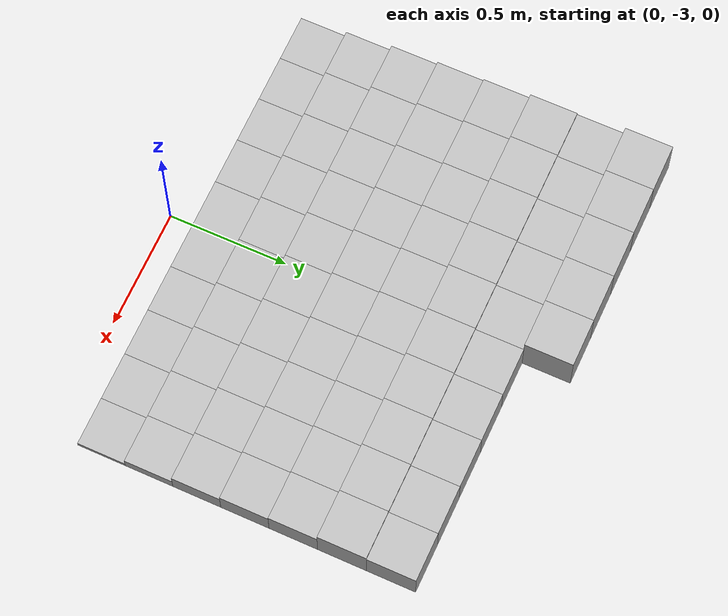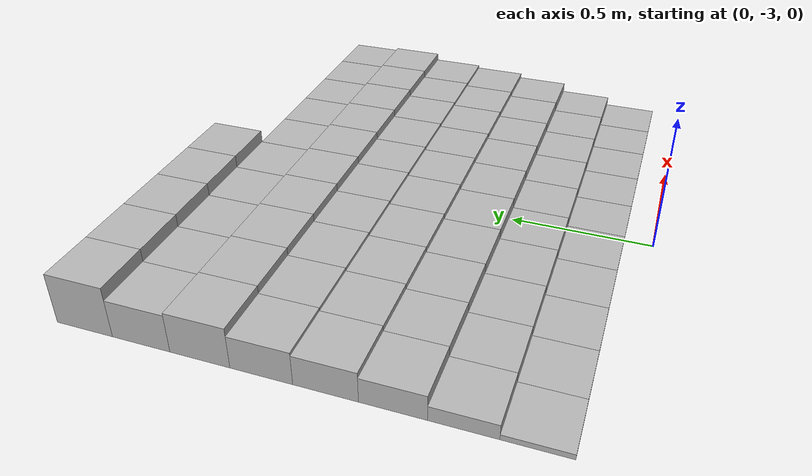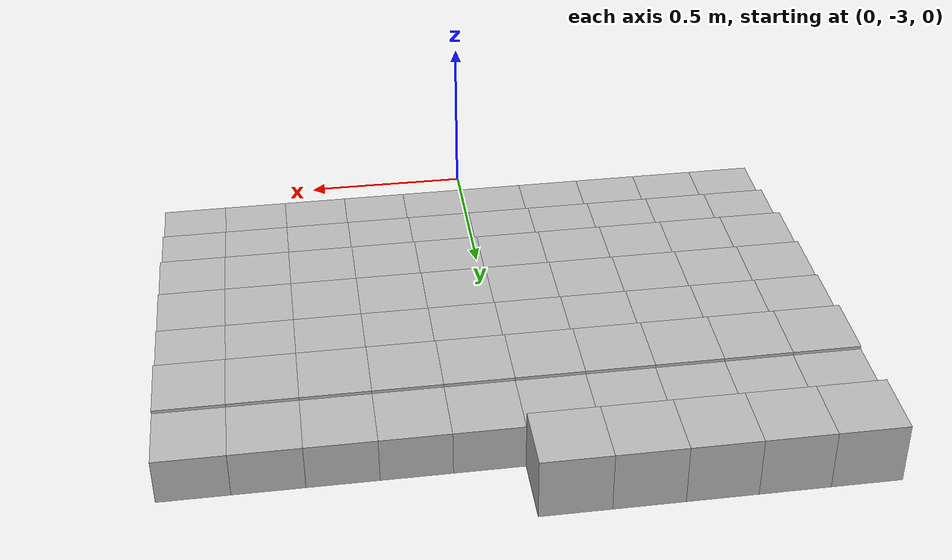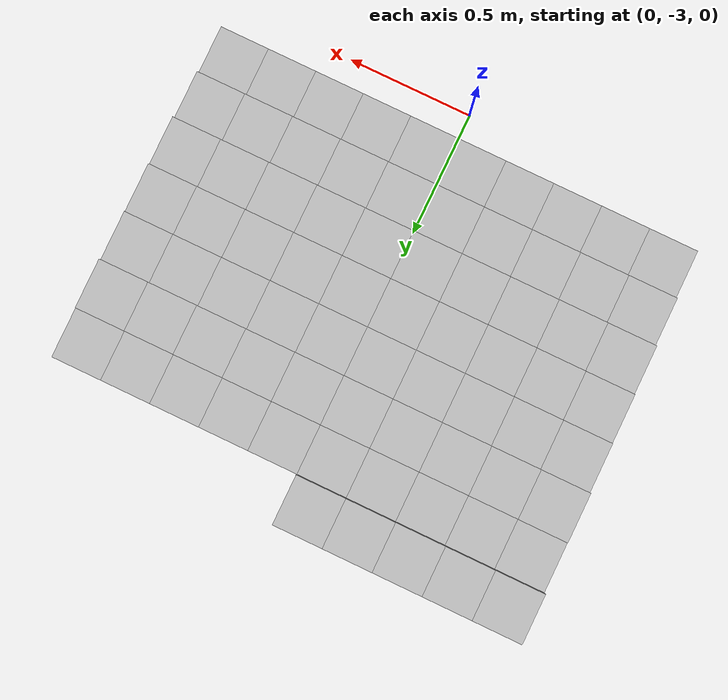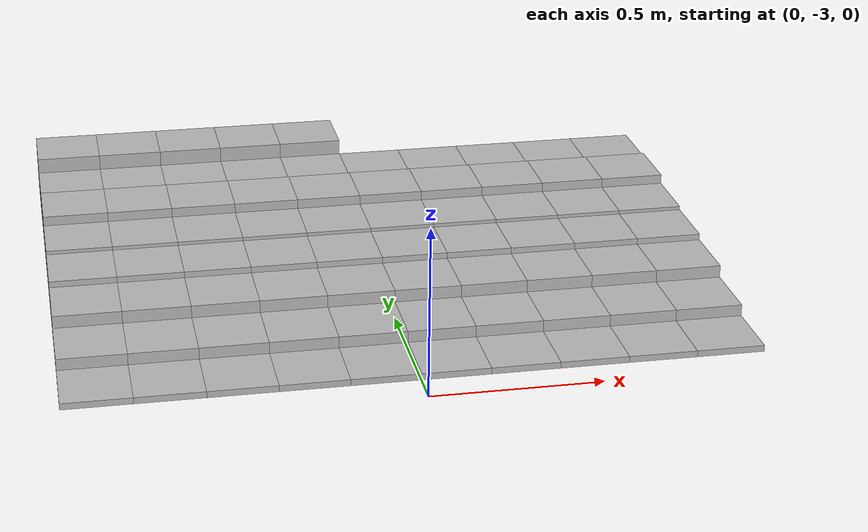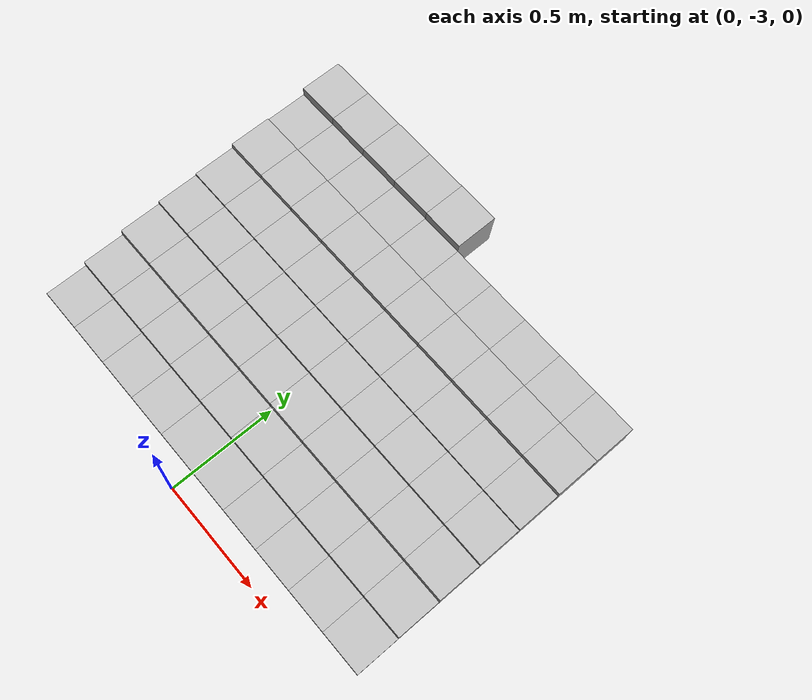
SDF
<sdf version="1.6">
 <model name="Terrain">
  <static>true</static>
  <link name="box_7_0">
   <pose>-0.9 -1.4 0.0936538717073 0 0 0</pose>
   <inertial>
    <mass>1.0</mass>
    <inertia><ixx>0.0</ixx><ixy>0.0</ixy><ixz>0.0</ixz><iyy>0.0</iyy><iyz>0.0</iyz><izz>0.0</izz></inertia>
   </inertial>
   <collision name="collision"><geometry><box><size>0.2 0.2 0.187307743415</size></box></geometry></collision>
   <visual name="visual"><geometry><box><size>0.2 0.2 0.187307743415</size></box></geometry></visual>
  </link>
  <link name="box_7_1">
   <pose>-0.7 -1.4 0.0936538717073 0 0 0</pose>
   <inertial>
    <mass>1.0</mass>
    <inertia><ixx>0.0</ixx><ixy>0.0</ixy><ixz>0.0</ixz><iyy>0.0</iyy><iyz>0.0</iyz><izz>0.0</izz></inertia>
   </inertial>
   <collision name="collision"><geometry><box><size>0.2 0.2 0.187307743415</size></box></geometry></collision>
   <visual name="visual"><geometry><box><size>0.2 0.2 0.187307743415</size></box></geometry></visual>
  </link>
  <link name="box_7_2">
   <pose>-0.5 -1.4 0.0936538717073 0 0 0</pose>
   <inertial>
    <mass>1.0</mass>
    <inertia><ixx>0.0</ixx><ixy>0.0</ixy><ixz>0.0</ixz><iyy>0.0</iyy><iyz>0.0</iyz><izz>0.0</izz></inertia>
   </inertial>
   <collision name="collision"><geometry><box><size>0.2 0.2 0.187307743415</size></box></geometry></collision>
   <visual name="visual"><geometry><box><size>0.2 0.2 0.187307743415</size></box></geometry></visual>
  </link>
  <link name="box_7_3">
   <pose>-0.3 -1.4 0.0936538717073 0 0 0</pose>
   <inertial>
    <mass>1.0</mass>
    <inertia><ixx>0.0</ixx><ixy>0.0</ixy><ixz>0.0</ixz><iyy>0.0</iyy><iyz>0.0</iyz><izz>0.0</izz></inertia>
   </inertial>
   <collision name="collision"><geometry><box><size>0.2 0.2 0.187307743415</size></box></geometry></collision>
   <visual name="visual"><geometry><box><size>0.2 0.2 0.187307743415</size></box></geometry></visual>
  </link>
  <link name="box_7_4">
   <pose>-0.1 -1.4 0.0936538717073 0 0 0</pose>
   <inertial>
    <mass>1.0</mass>
    <inertia><ixx>0.0</ixx><ixy>0.0</ixy><ixz>0.0</ixz><iyy>0.0</iyy><iyz>0.0</iyz><izz>0.0</izz></inertia>
   </inertial>
   <collision name="collision"><geometry><box><size>0.2 0.2 0.187307743415</size></box></geometry></collision>
   <visual name="visual"><geometry><box><size>0.2 0.2 0.187307743415</size></box></geometry></visual>
  </link>
  <link name="box_8_0">
   <pose>-0.9 -1.6 0.0700517910336 0 0 0</pose>
   <inertial>
    <mass>1.0</mass>
    <inertia><ixx>0.0</ixx><ixy>0.0</ixy><ixz>0.0</ixz><iyy>0.0</iyy><iyz>0.0</iyz><izz>0.0</izz></inertia>
   </inertial>
   <collision name="collision"><geometry><box><size>0.2 0.2 0.140103582067</size></box></geometry></collision>
   <visual name="visual"><geometry><box><size>0.2 0.2 0.140103582067</size></box></geometry></visual>
  </link>
  <link name="box_8_1">
   <pose>-0.7 -1.6 0.0700517910336 0 0 0</pose>
   <inertial>
    <mass>1.0</mass>
    <inertia><ixx>0.0</ixx><ixy>0.0</ixy><ixz>0.0</ixz><iyy>0.0</iyy><iyz>0.0</iyz><izz>0.0</izz></inertia>
   </inertial>
   <collision name="collision"><geometry><box><size>0.2 0.2 0.140103582067</size></box></geometry></collision>
   <visual name="visual"><geometry><box><size>0.2 0.2 0.140103582067</size></box></geometry></visual>
  </link>
  <link name="box_8_2">
   <pose>-0.5 -1.6 0.0700517910336 0 0 0</pose>
   <inertial>
    <mass>1.0</mass>
    <inertia><ixx>0.0</ixx><ixy>0.0</ixy><ixz>0.0</ixz><iyy>0.0</iyy><iyz>0.0</iyz><izz>0.0</izz></inertia>
   </inertial>
   <collision name="collision"><geometry><box><size>0.2 0.2 0.140103582067</size></box></geometry></collision>
   <visual name="visual"><geometry><box><size>0.2 0.2 0.140103582067</size></box></geometry></visual>
  </link>
  <link name="box_8_3">
   <pose>-0.3 -1.6 0.0700517910336 0 0 0</pose>
   <inertial>
    <mass>1.0</mass>
    <inertia><ixx>0.0</ixx><ixy>0.0</ixy><ixz>0.0</ixz><iyy>0.0</iyy><iyz>0.0</iyz><izz>0.0</izz></inertia>
   </inertial>
   <collision name="collision"><geometry><box><size>0.2 0.2 0.140103582067</size></box></geometry></collision>
   <visual name="visual"><geometry><box><size>0.2 0.2 0.140103582067</size></box></geometry></visual>
  </link>
  <link name="box_8_4">
   <pose>-0.1 -1.6 0.0700517910336 0 0 0</pose>
   <inertial>
    <mass>1.0</mass>
    <inertia><ixx>0.0</ixx><ixy>0.0</ixy><ixz>0.0</ixz><iyy>0.0</iyy><iyz>0.0</iyz><izz>0.0</izz></inertia>
   </inertial>
   <collision name="collision"><geometry><box><size>0.2 0.2 0.140103582067</size></box></geometry></collision>
   <visual name="visual"><geometry><box><size>0.2 0.2 0.140103582067</size></box></geometry></visual>
  </link>
  <link name="box_8_5">
   <pose>0.1 -1.6 0.0700517910336 0 0 0</pose>
   <inertial>
    <mass>1.0</mass>
    <inertia><ixx>0.0</ixx><ixy>0.0</ixy><ixz>0.0</ixz><iyy>0.0</iyy><iyz>0.0</iyz><izz>0.0</izz></inertia>
   </inertial>
   <collision name="collision"><geometry><box><size>0.2 0.2 0.140103582067</size></box></geometry></collision>
   <visual name="visual"><geometry><box><size>0.2 0.2 0.140103582067</size></box></geometry></visual>
  </link>
  <link name="box_8_6">
   <pose>0.3 -1.6 0.0700517910336 0 0 0</pose>
   <inertial>
    <mass>1.0</mass>
    <inertia><ixx>0.0</ixx><ixy>0.0</ixy><ixz>0.0</ixz><iyy>0.0</iyy><iyz>0.0</iyz><izz>0.0</izz></inertia>
   </inertial>
   <collision name="collision"><geometry><box><size>0.2 0.2 0.140103582067</size></box></geometry></collision>
   <visual name="visual"><geometry><box><size>0.2 0.2 0.140103582067</size></box></geometry></visual>
  </link>
  <link name="box_8_7">
   <pose>0.5 -1.6 0.0700517910336 0 0 0</pose>
   <inertial>
    <mass>1.0</mass>
    <inertia><ixx>0.0</ixx><ixy>0.0</ixy><ixz>0.0</ixz><iyy>0.0</iyy><iyz>0.0</iyz><izz>0.0</izz></inertia>
   </inertial>
   <collision name="collision"><geometry><box><size>0.2 0.2 0.140103582067</size></box></geometry></collision>
   <visual name="visual"><geometry><box><size>0.2 0.2 0.140103582067</size></box></geometry></visual>
  </link>
  <link name="box_8_8">
   <pose>0.7 -1.6 0.0700517910336 0 0 0</pose>
   <inertial>
    <mass>1.0</mass>
    <inertia><ixx>0.0</ixx><ixy>0.0</ixy><ixz>0.0</ixz><iyy>0.0</iyy><iyz>0.0</iyz><izz>0.0</izz></inertia>
   </inertial>
   <collision name="collision"><geometry><box><size>0.2 0.2 0.140103582067</size></box></geometry></collision>
   <visual name="visual"><geometry><box><size>0.2 0.2 0.140103582067</size></box></geometry></visual>
  </link>
  <link name="box_8_9">
   <pose>0.9 -1.6 0.0700517910336 0 0 0</pose>
   <inertial>
    <mass>1.0</mass>
    <inertia><ixx>0.0</ixx><ixy>0.0</ixy><ixz>0.0</ixz><iyy>0.0</iyy><iyz>0.0</iyz><izz>0.0</izz></inertia>
   </inertial>
   <collision name="collision"><geometry><box><size>0.2 0.2 0.140103582067</size></box></geometry></collision>
   <visual name="visual"><geometry><box><size>0.2 0.2 0.140103582067</size></box></geometry></visual>
  </link>
  <link name="box_9_0">
   <pose>-0.9 -1.8 0.0748229428655 0 0 0</pose>
   <inertial>
    <mass>1.0</mass>
    <inertia><ixx>0.0</ixx><ixy>0.0</ixy><ixz>0.0</ixz><iyy>0.0</iyy><iyz>0.0</iyz><izz>0.0</izz></inertia>
   </inertial>
   <collision name="collision"><geometry><box><size>0.2 0.2 0.149645885731</size></box></geometry></collision>
   <visual name="visual"><geometry><box><size>0.2 0.2 0.149645885731</size></box></geometry></visual>
  </link>
  <link name="box_9_1">
   <pose>-0.7 -1.8 0.0748229428655 0 0 0</pose>
   <inertial>
    <mass>1.0</mass>
    <inertia><ixx>0.0</ixx><ixy>0.0</ixy><ixz>0.0</ixz><iyy>0.0</iyy><iyz>0.0</iyz><izz>0.0</izz></inertia>
   </inertial>
   <collision name="collision"><geometry><box><size>0.2 0.2 0.149645885731</size></box></geometry></collision>
   <visual name="visual"><geometry><box><size>0.2 0.2 0.149645885731</size></box></geometry></visual>
  </link>
  <link name="box_9_2">
   <pose>-0.5 -1.8 0.0748229428655 0 0 0</pose>
   <inertial>
    <mass>1.0</mass>
    <inertia><ixx>0.0</ixx><ixy>0.0</ixy><ixz>0.0</ixz><iyy>0.0</iyy><iyz>0.0</iyz><izz>0.0</izz></inertia>
   </inertial>
   <collision name="collision"><geometry><box><size>0.2 0.2 0.149645885731</size></box></geometry></collision>
   <visual name="visual"><geometry><box><size>0.2 0.2 0.149645885731</size></box></geometry></visual>
  </link>
  <link name="box_9_3">
   <pose>-0.3 -1.8 0.0748229428655 0 0 0</pose>
   <inertial>
    <mass>1.0</mass>
    <inertia><ixx>0.0</ixx><ixy>0.0</ixy><ixz>0.0</ixz><iyy>0.0</iyy><iyz>0.0</iyz><izz>0.0</izz></inertia>
   </inertial>
   <collision name="collision"><geometry><box><size>0.2 0.2 0.149645885731</size></box></geometry></collision>
   <visual name="visual"><geometry><box><size>0.2 0.2 0.149645885731</size></box></geometry></visual>
  </link>
  <link name="box_9_4">
   <pose>-0.1 -1.8 0.0748229428655 0 0 0</pose>
   <inertial>
    <mass>1.0</mass>
    <inertia><ixx>0.0</ixx><ixy>0.0</ixy><ixz>0.0</ixz><iyy>0.0</iyy><iyz>0.0</iyz><izz>0.0</izz></inertia>
   </inertial>
   <collision name="collision"><geometry><box><size>0.2 0.2 0.149645885731</size></box></geometry></collision>
   <visual name="visual"><geometry><box><size>0.2 0.2 0.149645885731</size></box></geometry></visual>
  </link>
  <link name="box_9_5">
   <pose>0.1 -1.8 0.0748229428655 0 0 0</pose>
   <inertial>
    <mass>1.0</mass>
    <inertia><ixx>0.0</ixx><ixy>0.0</ixy><ixz>0.0</ixz><iyy>0.0</iyy><iyz>0.0</iyz><izz>0.0</izz></inertia>
   </inertial>
   <collision name="collision"><geometry><box><size>0.2 0.2 0.149645885731</size></box></geometry></collision>
   <visual name="visual"><geometry><box><size>0.2 0.2 0.149645885731</size></box></geometry></visual>
  </link>
  <link name="box_9_6">
   <pose>0.3 -1.8 0.0748229428655 0 0 0</pose>
   <inertial>
    <mass>1.0</mass>
    <inertia><ixx>0.0</ixx><ixy>0.0</ixy><ixz>0.0</ixz><iyy>0.0</iyy><iyz>0.0</iyz><izz>0.0</izz></inertia>
   </inertial>
   <collision name="collision"><geometry><box><size>0.2 0.2 0.149645885731</size></box></geometry></collision>
   <visual name="visual"><geometry><box><size>0.2 0.2 0.149645885731</size></box></geometry></visual>
  </link>
  <link name="box_9_7">
   <pose>0.5 -1.8 0.0748229428655 0 0 0</pose>
   <inertial>
    <mass>1.0</mass>
    <inertia><ixx>0.0</ixx><ixy>0.0</ixy><ixz>0.0</ixz><iyy>0.0</iyy><iyz>0.0</iyz><izz>0.0</izz></inertia>
   </inertial>
   <collision name="collision"><geometry><box><size>0.2 0.2 0.149645885731</size></box></geometry></collision>
   <visual name="visual"><geometry><box><size>0.2 0.2 0.149645885731</size></box></geometry></visual>
  </link>
  <link name="box_9_8">
   <pose>0.7 -1.8 0.0748229428655 0 0 0</pose>
   <inertial>
    <mass>1.0</mass>
    <inertia><ixx>0.0</ixx><ixy>0.0</ixy><ixz>0.0</ixz><iyy>0.0</iyy><iyz>0.0</iyz><izz>0.0</izz></inertia>
   </inertial>
   <collision name="collision"><geometry><box><size>0.2 0.2 0.149645885731</size></box></geometry></collision>
   <visual name="visual"><geometry><box><size>0.2 0.2 0.149645885731</size></box></geometry></visual>
  </link>
  <link name="box_9_9">
   <pose>0.9 -1.8 0.0748229428655 0 0 0</pose>
   <inertial>
    <mass>1.0</mass>
    <inertia><ixx>0.0</ixx><ixy>0.0</ixy><ixz>0.0</ixz><iyy>0.0</iyy><iyz>0.0</iyz><izz>0.0</izz></inertia>
   </inertial>
   <collision name="collision"><geometry><box><size>0.2 0.2 0.149645885731</size></box></geometry></collision>
   <visual name="visual"><geometry><box><size>0.2 0.2 0.149645885731</size></box></geometry></visual>
  </link>
  <link name="box_10_0">
   <pose>-0.9 -2.0 0.0601947128685 0 0 0</pose>
   <inertial>
    <mass>1.0</mass>
    <inertia><ixx>0.0</ixx><ixy>0.0</ixy><ixz>0.0</ixz><iyy>0.0</iyy><iyz>0.0</iyz><izz>0.0</izz></inertia>
   </inertial>
   <collision name="collision"><geometry><box><size>0.2 0.2 0.120389425737</size></box></geometry></collision>
   <visual name="visual"><geometry><box><size>0.2 0.2 0.120389425737</size></box></geometry></visual>
  </link>
  <link name="box_10_1">
   <pose>-0.7 -2.0 0.0601947128685 0 0 0</pose>
   <inertial>
    <mass>1.0</mass>
    <inertia><ixx>0.0</ixx><ixy>0.0</ixy><ixz>0.0</ixz><iyy>0.0</iyy><iyz>0.0</iyz><izz>0.0</izz></inertia>
   </inertial>
   <collision name="collision"><geometry><box><size>0.2 0.2 0.120389425737</size></box></geometry></collision>
   <visual name="visual"><geometry><box><size>0.2 0.2 0.120389425737</size></box></geometry></visual>
  </link>
  <link name="box_10_2">
   <pose>-0.5 -2.0 0.0601947128685 0 0 0</pose>
   <inertial>
    <mass>1.0</mass>
    <inertia><ixx>0.0</ixx><ixy>0.0</ixy><ixz>0.0</ixz><iyy>0.0</iyy><iyz>0.0</iyz><izz>0.0</izz></inertia>
   </inertial>
   <collision name="collision"><geometry><box><size>0.2 0.2 0.120389425737</size></box></geometry></collision>
   <visual name="visual"><geometry><box><size>0.2 0.2 0.120389425737</size></box></geometry></visual>
  </link>
  <link name="box_10_3">
   <pose>-0.3 -2.0 0.0601947128685 0 0 0</pose>
   <inertial>
    <mass>1.0</mass>
    <inertia><ixx>0.0</ixx><ixy>0.0</ixy><ixz>0.0</ixz><iyy>0.0</iyy><iyz>0.0</iyz><izz>0.0</izz></inertia>
   </inertial>
   <collision name="collision"><geometry><box><size>0.2 0.2 0.120389425737</size></box></geometry></collision>
   <visual name="visual"><geometry><box><size>0.2 0.2 0.120389425737</size></box></geometry></visual>
  </link>
  <link name="box_10_4">
   <pose>-0.1 -2.0 0.0601947128685 0 0 0</pose>
   <inertial>
    <mass>1.0</mass>
    <inertia><ixx>0.0</ixx><ixy>0.0</ixy><ixz>0.0</ixz><iyy>0.0</iyy><iyz>0.0</iyz><izz>0.0</izz></inertia>
   </inertial>
   <collision name="collision"><geometry><box><size>0.2 0.2 0.120389425737</size></box></geometry></collision>
   <visual name="visual"><geometry><box><size>0.2 0.2 0.120389425737</size></box></geometry></visual>
  </link>
  <link name="box_10_5">
   <pose>0.1 -2.0 0.0601947128685 0 0 0</pose>
   <inertial>
    <mass>1.0</mass>
    <inertia><ixx>0.0</ixx><ixy>0.0</ixy><ixz>0.0</ixz><iyy>0.0</iyy><iyz>0.0</iyz><izz>0.0</izz></inertia>
   </inertial>
   <collision name="collision"><geometry><box><size>0.2 0.2 0.120389425737</size></box></geometry></collision>
   <visual name="visual"><geometry><box><size>0.2 0.2 0.120389425737</size></box></geometry></visual>
  </link>
  <link name="box_10_6">
   <pose>0.3 -2.0 0.0601947128685 0 0 0</pose>
   <inertial>
    <mass>1.0</mass>
    <inertia><ixx>0.0</ixx><ixy>0.0</ixy><ixz>0.0</ixz><iyy>0.0</iyy><iyz>0.0</iyz><izz>0.0</izz></inertia>
   </inertial>
   <collision name="collision"><geometry><box><size>0.2 0.2 0.120389425737</size></box></geometry></collision>
   <visual name="visual"><geometry><box><size>0.2 0.2 0.120389425737</size></box></geometry></visual>
  </link>
  <link name="box_10_7">
   <pose>0.5 -2.0 0.0601947128685 0 0 0</pose>
   <inertial>
    <mass>1.0</mass>
    <inertia><ixx>0.0</ixx><ixy>0.0</ixy><ixz>0.0</ixz><iyy>0.0</iyy><iyz>0.0</iyz><izz>0.0</izz></inertia>
   </inertial>
   <collision name="collision"><geometry><box><size>0.2 0.2 0.120389425737</size></box></geometry></collision>
   <visual name="visual"><geometry><box><size>0.2 0.2 0.120389425737</size></box></geometry></visual>
  </link>
  <link name="box_10_8">
   <pose>0.7 -2.0 0.0601947128685 0 0 0</pose>
   <inertial>
    <mass>1.0</mass>
    <inertia><ixx>0.0</ixx><ixy>0.0</ixy><ixz>0.0</ixz><iyy>0.0</iyy><iyz>0.0</iyz><izz>0.0</izz></inertia>
   </inertial>
   <collision name="collision"><geometry><box><size>0.2 0.2 0.120389425737</size></box></geometry></collision>
   <visual name="visual"><geometry><box><size>0.2 0.2 0.120389425737</size></box></geometry></visual>
  </link>
  <link name="box_10_9">
   <pose>0.9 -2.0 0.0601947128685 0 0 0</pose>
   <inertial>
    <mass>1.0</mass>
    <inertia><ixx>0.0</ixx><ixy>0.0</ixy><ixz>0.0</ixz><iyy>0.0</iyy><iyz>0.0</iyz><izz>0.0</izz></inertia>
   </inertial>
   <collision name="collision"><geometry><box><size>0.2 0.2 0.120389425737</size></box></geometry></collision>
   <visual name="visual"><geometry><box><size>0.2 0.2 0.120389425737</size></box></geometry></visual>
  </link>
  <link name="box_11_0">
   <pose>-0.9 -2.2 0.0546795150724 0 0 0</pose>
   <inertial>
    <mass>1.0</mass>
    <inertia><ixx>0.0</ixx><ixy>0.0</ixy><ixz>0.0</ixz><iyy>0.0</iyy><iyz>0.0</iyz><izz>0.0</izz></inertia>
   </inertial>
   <collision name="collision"><geometry><box><size>0.2 0.2 0.109359030145</size></box></geometry></collision>
   <visual name="visual"><geometry><box><size>0.2 0.2 0.109359030145</size></box></geometry></visual>
  </link>
  <link name="box_11_1">
   <pose>-0.7 -2.2 0.0546795150724 0 0 0</pose>
   <inertial>
    <mass>1.0</mass>
    <inertia><ixx>0.0</ixx><ixy>0.0</ixy><ixz>0.0</ixz><iyy>0.0</iyy><iyz>0.0</iyz><izz>0.0</izz></inertia>
   </inertial>
   <collision name="collision"><geometry><box><size>0.2 0.2 0.109359030145</size></box></geometry></collision>
   <visual name="visual"><geometry><box><size>0.2 0.2 0.109359030145</size></box></geometry></visual>
  </link>
  <link name="box_11_2">
   <pose>-0.5 -2.2 0.0546795150724 0 0 0</pose>
   <inertial>
    <mass>1.0</mass>
    <inertia><ixx>0.0</ixx><ixy>0.0</ixy><ixz>0.0</ixz><iyy>0.0</iyy><iyz>0.0</iyz><izz>0.0</izz></inertia>
   </inertial>
   <collision name="collision"><geometry><box><size>0.2 0.2 0.109359030145</size></box></geometry></collision>
   <visual name="visual"><geometry><box><size>0.2 0.2 0.109359030145</size></box></geometry></visual>
  </link>
  <link name="box_11_3">
   <pose>-0.3 -2.2 0.0546795150724 0 0 0</pose>
   <inertial>
    <mass>1.0</mass>
    <inertia><ixx>0.0</ixx><ixy>0.0</ixy><ixz>0.0</ixz><iyy>0.0</iyy><iyz>0.0</iyz><izz>0.0</izz></inertia>
   </inertial>
   <collision name="collision"><geometry><box><size>0.2 0.2 0.109359030145</size></box></geometry></collision>
   <visual name="visual"><geometry><box><size>0.2 0.2 0.109359030145</size></box></geometry></visual>
  </link>
  <link name="box_11_4">
   <pose>-0.1 -2.2 0.0546795150724 0 0 0</pose>
   <inertial>
    <mass>1.0</mass>
    <inertia><ixx>0.0</ixx><ixy>0.0</ixy><ixz>0.0</ixz><iyy>0.0</iyy><iyz>0.0</iyz><izz>0.0</izz></inertia>
   </inertial>
   <collision name="collision"><geometry><box><size>0.2 0.2 0.109359030145</size></box></geometry></collision>
   <visual name="visual"><geometry><box><size>0.2 0.2 0.109359030145</size></box></geometry></visual>
  </link>
  <link name="box_11_5">
   <pose>0.1 -2.2 0.0546795150724 0 0 0</pose>
   <inertial>
    <mass>1.0</mass>
    <inertia><ixx>0.0</ixx><ixy>0.0</ixy><ixz>0.0</ixz><iyy>0.0</iyy><iyz>0.0</iyz><izz>0.0</izz></inertia>
   </inertial>
   <collision name="collision"><geometry><box><size>0.2 0.2 0.109359030145</size></box></geometry></collision>
   <visual name="visual"><geometry><box><size>0.2 0.2 0.109359030145</size></box></geometry></visual>
  </link>
  <link name="box_11_6">
   <pose>0.3 -2.2 0.0546795150724 0 0 0</pose>
   <inertial>
    <mass>1.0</mass>
    <inertia><ixx>0.0</ixx><ixy>0.0</ixy><ixz>0.0</ixz><iyy>0.0</iyy><iyz>0.0</iyz><izz>0.0</izz></inertia>
   </inertial>
   <collision name="collision"><geometry><box><size>0.2 0.2 0.109359030145</size></box></geometry></collision>
   <visual name="visual"><geometry><box><size>0.2 0.2 0.109359030145</size></box></geometry></visual>
  </link>
  <link name="box_11_7">
   <pose>0.5 -2.2 0.0546795150724 0 0 0</pose>
   <inertial>
    <mass>1.0</mass>
    <inertia><ixx>0.0</ixx><ixy>0.0</ixy><ixz>0.0</ixz><iyy>0.0</iyy><iyz>0.0</iyz><izz>0.0</izz></inertia>
   </inertial>
   <collision name="collision"><geometry><box><size>0.2 0.2 0.109359030145</size></box></geometry></collision>
   <visual name="visual"><geometry><box><size>0.2 0.2 0.109359030145</size></box></geometry></visual>
  </link>
  <link name="box_11_8">
   <pose>0.7 -2.2 0.0546795150724 0 0 0</pose>
   <inertial>
    <mass>1.0</mass>
    <inertia><ixx>0.0</ixx><ixy>0.0</ixy><ixz>0.0</ixz><iyy>0.0</iyy><iyz>0.0</iyz><izz>0.0</izz></inertia>
   </inertial>
   <collision name="collision"><geometry><box><size>0.2 0.2 0.109359030145</size></box></geometry></collision>
   <visual name="visual"><geometry><box><size>0.2 0.2 0.109359030145</size></box></geometry></visual>
  </link>
  <link name="box_11_9">
   <pose>0.9 -2.2 0.0546795150724 0 0 0</pose>
   <inertial>
    <mass>1.0</mass>
    <inertia><ixx>0.0</ixx><ixy>0.0</ixy><ixz>0.0</ixz><iyy>0.0</iyy><iyz>0.0</iyz><izz>0.0</izz></inertia>
   </inertial>
   <collision name="collision"><geometry><box><size>0.2 0.2 0.109359030145</size></box></geometry></collision>
   <visual name="visual"><geometry><box><size>0.2 0.2 0.109359030145</size></box></geometry></visual>
  </link>
  <link name="box_12_0">
   <pose>-0.9 -2.4 0.0453032156988 0 0 0</pose>
   <inertial>
    <mass>1.0</mass>
    <inertia><ixx>0.0</ixx><ixy>0.0</ixy><ixz>0.0</ixz><iyy>0.0</iyy><iyz>0.0</iyz><izz>0.0</izz></inertia>
   </inertial>
   <collision name="collision"><geometry><box><size>0.2 0.2 0.0906064313975</size></box></geometry></collision>
   <visual name="visual"><geometry><box><size>0.2 0.2 0.0906064313975</size></box></geometry></visual>
  </link>
  <link name="box_12_1">
   <pose>-0.7 -2.4 0.0453032156988 0 0 0</pose>
   <inertial>
    <mass>1.0</mass>
    <inertia><ixx>0.0</ixx><ixy>0.0</ixy><ixz>0.0</ixz><iyy>0.0</iyy><iyz>0.0</iyz><izz>0.0</izz></inertia>
   </inertial>
   <collision name="collision"><geometry><box><size>0.2 0.2 0.0906064313975</size></box></geometry></collision>
   <visual name="visual"><geometry><box><size>0.2 0.2 0.0906064313975</size></box></geometry></visual>
  </link>
  <link name="box_12_2">
   <pose>-0.5 -2.4 0.0453032156988 0 0 0</pose>
   <inertial>
    <mass>1.0</mass>
    <inertia><ixx>0.0</ixx><ixy>0.0</ixy><ixz>0.0</ixz><iyy>0.0</iyy><iyz>0.0</iyz><izz>0.0</izz></inertia>
   </inertial>
   <collision name="collision"><geometry><box><size>0.2 0.2 0.0906064313975</size></box></geometry></collision>
   <visual name="visual"><geometry><box><size>0.2 0.2 0.0906064313975</size></box></geometry></visual>
  </link>
  <link name="box_12_3">
   <pose>-0.3 -2.4 0.0453032156988 0 0 0</pose>
   <inertial>
    <mass>1.0</mass>
    <inertia><ixx>0.0</ixx><ixy>0.0</ixy><ixz>0.0</ixz><iyy>0.0</iyy><iyz>0.0</iyz><izz>0.0</izz></inertia>
   </inertial>
   <collision name="collision"><geometry><box><size>0.2 0.2 0.0906064313975</size></box></geometry></collision>
   <visual name="visual"><geometry><box><size>0.2 0.2 0.0906064313975</size></box></geometry></visual>
  </link>
  <link name="box_12_4">
   <pose>-0.1 -2.4 0.0453032156988 0 0 0</pose>
   <inertial>
    <mass>1.0</mass>
    <inertia><ixx>0.0</ixx><ixy>0.0</ixy><ixz>0.0</ixz><iyy>0.0</iyy><iyz>0.0</iyz><izz>0.0</izz></inertia>
   </inertial>
   <collision name="collision"><geometry><box><size>0.2 0.2 0.0906064313975</size></box></geometry></collision>
   <visual name="visual"><geometry><box><size>0.2 0.2 0.0906064313975</size></box></geometry></visual>
  </link>
  <link name="box_12_5">
   <pose>0.1 -2.4 0.0453032156988 0 0 0</pose>
   <inertial>
    <mass>1.0</mass>
    <inertia><ixx>0.0</ixx><ixy>0.0</ixy><ixz>0.0</ixz><iyy>0.0</iyy><iyz>0.0</iyz><izz>0.0</izz></inertia>
   </inertial>
   <collision name="collision"><geometry><box><size>0.2 0.2 0.0906064313975</size></box></geometry></collision>
   <visual name="visual"><geometry><box><size>0.2 0.2 0.0906064313975</size></box></geometry></visual>
  </link>
  <link name="box_12_6">
   <pose>0.3 -2.4 0.0453032156988 0 0 0</pose>
   <inertial>
    <mass>1.0</mass>
    <inertia><ixx>0.0</ixx><ixy>0.0</ixy><ixz>0.0</ixz><iyy>0.0</iyy><iyz>0.0</iyz><izz>0.0</izz></inertia>
   </inertial>
   <collision name="collision"><geometry><box><size>0.2 0.2 0.0906064313975</size></box></geometry></collision>
   <visual name="visual"><geometry><box><size>0.2 0.2 0.0906064313975</size></box></geometry></visual>
  </link>
  <link name="box_12_7">
   <pose>0.5 -2.4 0.0453032156988 0 0 0</pose>
   <inertial>
    <mass>1.0</mass>
    <inertia><ixx>0.0</ixx><ixy>0.0</ixy><ixz>0.0</ixz><iyy>0.0</iyy><iyz>0.0</iyz><izz>0.0</izz></inertia>
   </inertial>
   <collision name="collision"><geometry><box><size>0.2 0.2 0.0906064313975</size></box></geometry></collision>
   <visual name="visual"><geometry><box><size>0.2 0.2 0.0906064313975</size></box></geometry></visual>
  </link>
  <link name="box_12_8">
   <pose>0.7 -2.4 0.0453032156988 0 0 0</pose>
   <inertial>
    <mass>1.0</mass>
    <inertia><ixx>0.0</ixx><ixy>0.0</ixy><ixz>0.0</ixz><iyy>0.0</iyy><iyz>0.0</iyz><izz>0.0</izz></inertia>
   </inertial>
   <collision name="collision"><geometry><box><size>0.2 0.2 0.0906064313975</size></box></geometry></collision>
   <visual name="visual"><geometry><box><size>0.2 0.2 0.0906064313975</size></box></geometry></visual>
  </link>
  <link name="box_12_9">
   <pose>0.9 -2.4 0.0453032156988 0 0 0</pose>
   <inertial>
    <mass>1.0</mass>
    <inertia><ixx>0.0</ixx><ixy>0.0</ixy><ixz>0.0</ixz><iyy>0.0</iyy><iyz>0.0</iyz><izz>0.0</izz></inertia>
   </inertial>
   <collision name="collision"><geometry><box><size>0.2 0.2 0.0906064313975</size></box></geometry></collision>
   <visual name="visual"><geometry><box><size>0.2 0.2 0.0906064313975</size></box></geometry></visual>
  </link>
  <link name="box_13_0">
   <pose>-0.9 -2.6 0.0266468656925 0 0 0</pose>
   <inertial>
    <mass>1.0</mass>
    <inertia><ixx>0.0</ixx><ixy>0.0</ixy><ixz>0.0</ixz><iyy>0.0</iyy><iyz>0.0</iyz><izz>0.0</izz></inertia>
   </inertial>
   <collision name="collision"><geometry><box><size>0.2 0.2 0.053293731385</size></box></geometry></collision>
   <visual name="visual"><geometry><box><size>0.2 0.2 0.053293731385</size></box></geometry></visual>
  </link>
  <link name="box_13_1">
   <pose>-0.7 -2.6 0.0266468656925 0 0 0</pose>
   <inertial>
    <mass>1.0</mass>
    <inertia><ixx>0.0</ixx><ixy>0.0</ixy><ixz>0.0</ixz><iyy>0.0</iyy><iyz>0.0</iyz><izz>0.0</izz></inertia>
   </inertial>
   <collision name="collision"><geometry><box><size>0.2 0.2 0.053293731385</size></box></geometry></collision>
   <visual name="visual"><geometry><box><size>0.2 0.2 0.053293731385</size></box></geometry></visual>
  </link>
  <link name="box_13_2">
   <pose>-0.5 -2.6 0.0266468656925 0 0 0</pose>
   <inertial>
    <mass>1.0</mass>
    <inertia><ixx>0.0</ixx><ixy>0.0</ixy><ixz>0.0</ixz><iyy>0.0</iyy><iyz>0.0</iyz><izz>0.0</izz></inertia>
   </inertial>
   <collision name="collision"><geometry><box><size>0.2 0.2 0.053293731385</size></box></geometry></collision>
   <visual name="visual"><geometry><box><size>0.2 0.2 0.053293731385</size></box></geometry></visual>
  </link>
  <link name="box_13_3">
   <pose>-0.3 -2.6 0.0266468656925 0 0 0</pose>
   <inertial>
    <mass>1.0</mass>
    <inertia><ixx>0.0</ixx><ixy>0.0</ixy><ixz>0.0</ixz><iyy>0.0</iyy><iyz>0.0</iyz><izz>0.0</izz></inertia>
   </inertial>
   <collision name="collision"><geometry><box><size>0.2 0.2 0.053293731385</size></box></geometry></collision>
   <visual name="visual"><geometry><box><size>0.2 0.2 0.053293731385</size></box></geometry></visual>
  </link>
  <link name="box_13_4">
   <pose>-0.1 -2.6 0.0266468656925 0 0 0</pose>
   <inertial>
    <mass>1.0</mass>
    <inertia><ixx>0.0</ixx><ixy>0.0</ixy><ixz>0.0</ixz><iyy>0.0</iyy><iyz>0.0</iyz><izz>0.0</izz></inertia>
   </inertial>
   <collision name="collision"><geometry><box><size>0.2 0.2 0.053293731385</size></box></geometry></collision>
   <visual name="visual"><geometry><box><size>0.2 0.2 0.053293731385</size></box></geometry></visual>
  </link>
  <link name="box_13_5">
   <pose>0.1 -2.6 0.0266468656925 0 0 0</pose>
   <inertial>
    <mass>1.0</mass>
    <inertia><ixx>0.0</ixx><ixy>0.0</ixy><ixz>0.0</ixz><iyy>0.0</iyy><iyz>0.0</iyz><izz>0.0</izz></inertia>
   </inertial>
   <collision name="collision"><geometry><box><size>0.2 0.2 0.053293731385</size></box></geometry></collision>
   <visual name="visual"><geometry><box><size>0.2 0.2 0.053293731385</size></box></geometry></visual>
  </link>
  <link name="box_13_6">
   <pose>0.3 -2.6 0.0266468656925 0 0 0</pose>
   <inertial>
    <mass>1.0</mass>
    <inertia><ixx>0.0</ixx><ixy>0.0</ixy><ixz>0.0</ixz><iyy>0.0</iyy><iyz>0.0</iyz><izz>0.0</izz></inertia>
   </inertial>
   <collision name="collision"><geometry><box><size>0.2 0.2 0.053293731385</size></box></geometry></collision>
   <visual name="visual"><geometry><box><size>0.2 0.2 0.053293731385</size></box></geometry></visual>
  </link>
  <link name="box_13_7">
   <pose>0.5 -2.6 0.0266468656925 0 0 0</pose>
   <inertial>
    <mass>1.0</mass>
    <inertia><ixx>0.0</ixx><ixy>0.0</ixy><ixz>0.0</ixz><iyy>0.0</iyy><iyz>0.0</iyz><izz>0.0</izz></inertia>
   </inertial>
   <collision name="collision"><geometry><box><size>0.2 0.2 0.053293731385</size></box></geometry></collision>
   <visual name="visual"><geometry><box><size>0.2 0.2 0.053293731385</size></box></geometry></visual>
  </link>
  <link name="box_13_8">
   <pose>0.7 -2.6 0.0266468656925 0 0 0</pose>
   <inertial>
    <mass>1.0</mass>
    <inertia><ixx>0.0</ixx><ixy>0.0</ixy><ixz>0.0</ixz><iyy>0.0</iyy><iyz>0.0</iyz><izz>0.0</izz></inertia>
   </inertial>
   <collision name="collision"><geometry><box><size>0.2 0.2 0.053293731385</size></box></geometry></collision>
   <visual name="visual"><geometry><box><size>0.2 0.2 0.053293731385</size></box></geometry></visual>
  </link>
  <link name="box_13_9">
   <pose>0.9 -2.6 0.0266468656925 0 0 0</pose>
   <inertial>
    <mass>1.0</mass>
    <inertia><ixx>0.0</ixx><ixy>0.0</ixy><ixz>0.0</ixz><iyy>0.0</iyy><iyz>0.0</iyz><izz>0.0</izz></inertia>
   </inertial>
   <collision name="collision"><geometry><box><size>0.2 0.2 0.053293731385</size></box></geometry></collision>
   <visual name="visual"><geometry><box><size>0.2 0.2 0.053293731385</size></box></geometry></visual>
  </link>
  <link name="box_14_0">
   <pose>-0.9 -2.8 0.00940048377619 0 0 0</pose>
   <inertial>
    <mass>1.0</mass>
    <inertia><ixx>0.0</ixx><ixy>0.0</ixy><ixz>0.0</ixz><iyy>0.0</iyy><iyz>0.0</iyz><izz>0.0</izz></inertia>
   </inertial>
   <collision name="collision"><geometry><box><size>0.2 0.2 0.0188009675524</size></box></geometry></collision>
   <visual name="visual"><geometry><box><size>0.2 0.2 0.0188009675524</size></box></geometry></visual>
  </link>
  <link name="box_14_1">
   <pose>-0.7 -2.8 0.00940048377619 0 0 0</pose>
   <inertial>
    <mass>1.0</mass>
    <inertia><ixx>0.0</ixx><ixy>0.0</ixy><ixz>0.0</ixz><iyy>0.0</iyy><iyz>0.0</iyz><izz>0.0</izz></inertia>
   </inertial>
   <collision name="collision"><geometry><box><size>0.2 0.2 0.0188009675524</size></box></geometry></collision>
   <visual name="visual"><geometry><box><size>0.2 0.2 0.0188009675524</size></box></geometry></visual>
  </link>
  <link name="box_14_2">
   <pose>-0.5 -2.8 0.00940048377619 0 0 0</pose>
   <inertial>
    <mass>1.0</mass>
    <inertia><ixx>0.0</ixx><ixy>0.0</ixy><ixz>0.0</ixz><iyy>0.0</iyy><iyz>0.0</iyz><izz>0.0</izz></inertia>
   </inertial>
   <collision name="collision"><geometry><box><size>0.2 0.2 0.0188009675524</size></box></geometry></collision>
   <visual name="visual"><geometry><box><size>0.2 0.2 0.0188009675524</size></box></geometry></visual>
  </link>
  <link name="box_14_3">
   <pose>-0.3 -2.8 0.00940048377619 0 0 0</pose>
   <inertial>
    <mass>1.0</mass>
    <inertia><ixx>0.0</ixx><ixy>0.0</ixy><ixz>0.0</ixz><iyy>0.0</iyy><iyz>0.0</iyz><izz>0.0</izz></inertia>
   </inertial>
   <collision name="collision"><geometry><box><size>0.2 0.2 0.0188009675524</size></box></geometry></collision>
   <visual name="visual"><geometry><box><size>0.2 0.2 0.0188009675524</size></box></geometry></visual>
  </link>
  <link name="box_14_4">
   <pose>-0.1 -2.8 0.00940048377619 0 0 0</pose>
   <inertial>
    <mass>1.0</mass>
    <inertia><ixx>0.0</ixx><ixy>0.0</ixy><ixz>0.0</ixz><iyy>0.0</iyy><iyz>0.0</iyz><izz>0.0</izz></inertia>
   </inertial>
   <collision name="collision"><geometry><box><size>0.2 0.2 0.0188009675524</size></box></geometry></collision>
   <visual name="visual"><geometry><box><size>0.2 0.2 0.0188009675524</size></box></geometry></visual>
  </link>
  <link name="box_14_5">
   <pose>0.1 -2.8 0.00940048377619 0 0 0</pose>
   <inertial>
    <mass>1.0</mass>
    <inertia><ixx>0.0</ixx><ixy>0.0</ixy><ixz>0.0</ixz><iyy>0.0</iyy><iyz>0.0</iyz><izz>0.0</izz></inertia>
   </inertial>
   <collision name="collision"><geometry><box><size>0.2 0.2 0.0188009675524</size></box></geometry></collision>
   <visual name="visual"><geometry><box><size>0.2 0.2 0.0188009675524</size></box></geometry></visual>
  </link>
  <link name="box_14_6">
   <pose>0.3 -2.8 0.00940048377619 0 0 0</pose>
   <inertial>
    <mass>1.0</mass>
    <inertia><ixx>0.0</ixx><ixy>0.0</ixy><ixz>0.0</ixz><iyy>0.0</iyy><iyz>0.0</iyz><izz>0.0</izz></inertia>
   </inertial>
   <collision name="collision"><geometry><box><size>0.2 0.2 0.0188009675524</size></box></geometry></collision>
   <visual name="visual"><geometry><box><size>0.2 0.2 0.0188009675524</size></box></geometry></visual>
  </link>
  <link name="box_14_7">
   <pose>0.5 -2.8 0.00940048377619 0 0 0</pose>
   <inertial>
    <mass>1.0</mass>
    <inertia><ixx>0.0</ixx><ixy>0.0</ixy><ixz>0.0</ixz><iyy>0.0</iyy><iyz>0.0</iyz><izz>0.0</izz></inertia>
   </inertial>
   <collision name="collision"><geometry><box><size>0.2 0.2 0.0188009675524</size></box></geometry></collision>
   <visual name="visual"><geometry><box><size>0.2 0.2 0.0188009675524</size></box></geometry></visual>
  </link>
  <link name="box_14_8">
   <pose>0.7 -2.8 0.00940048377619 0 0 0</pose>
   <inertial>
    <mass>1.0</mass>
    <inertia><ixx>0.0</ixx><ixy>0.0</ixy><ixz>0.0</ixz><iyy>0.0</iyy><iyz>0.0</iyz><izz>0.0</izz></inertia>
   </inertial>
   <collision name="collision"><geometry><box><size>0.2 0.2 0.0188009675524</size></box></geometry></collision>
   <visual name="visual"><geometry><box><size>0.2 0.2 0.0188009675524</size></box></geometry></visual>
  </link>
  <link name="box_14_9">
   <pose>0.9 -2.8 0.00940048377619 0 0 0</pose>
   <inertial>
    <mass>1.0</mass>
    <inertia><ixx>0.0</ixx><ixy>0.0</ixy><ixz>0.0</ixz><iyy>0.0</iyy><iyz>0.0</iyz><izz>0.0</izz></inertia>
   </inertial>
   <collision name="collision"><geometry><box><size>0.2 0.2 0.0188009675524</size></box></geometry></collision>
   <visual name="visual"><geometry><box><size>0.2 0.2 0.0188009675524</size></box></geometry></visual>
  </link>
 </model>
</sdf>
